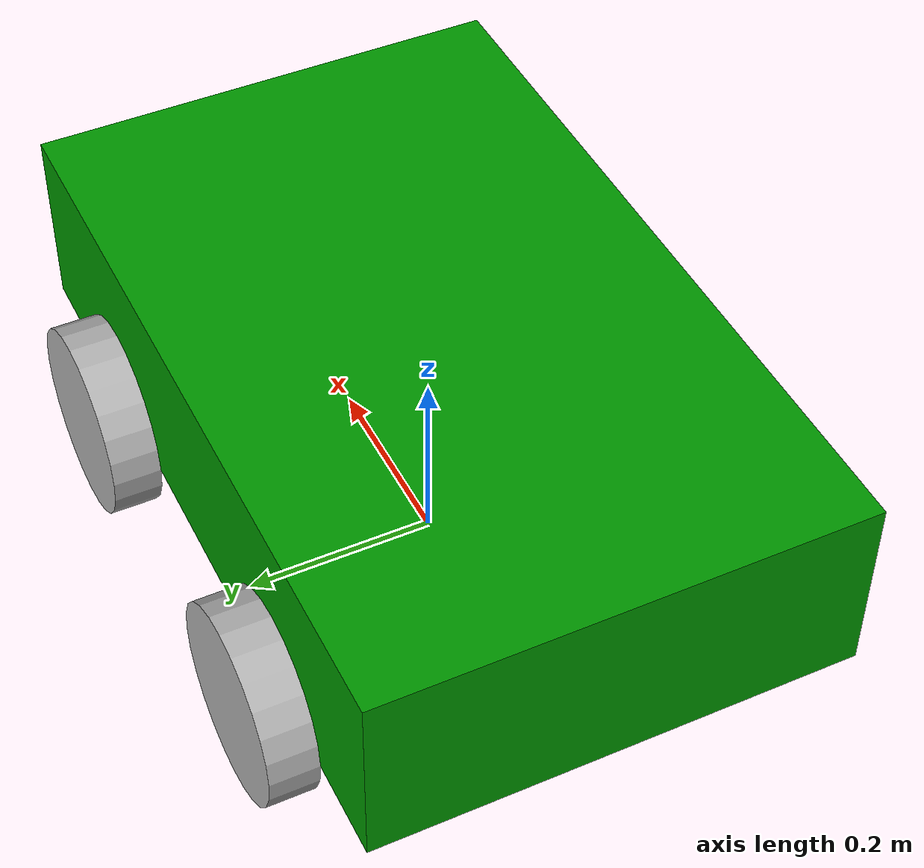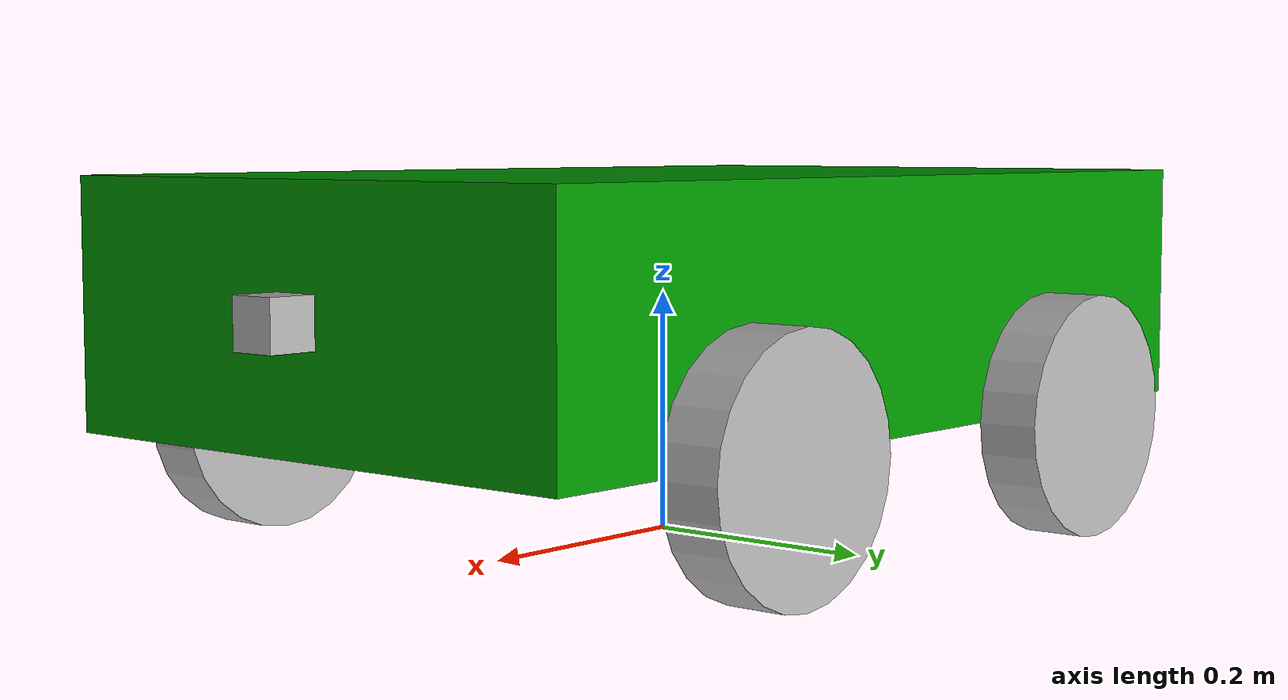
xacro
<?xml version="1.0"?>
<robot name="mobile_robot" xmlns:xacro="http://www.ros.org/wiki/xacro">

    <xacro:include filename="$(find mobile_robot_description)/urdf/common_properties.xacro" />
    <xacro:include filename="$(find mobile_robot_description)/urdf/mobile_base.xacro" />
    <xacro:include filename="$(find mobile_robot_description)/urdf/line_camera.xacro" />
    <xacro:include filename="$(find mobile_robot_description)/urdf/mobile_base_gazebo.xacro" />
    <xacro:include filename="$(find mobile_robot_description)/urdf/mobile_base.ros2_control.xacro" />
</robot>

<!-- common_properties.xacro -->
<robot xmlns:xacro="https://www.ros.org/wiki/xacro">

    <xacro:property name="base_length" value="0.8" />
    <xacro:property name="base_width" value="0.5" />
    <xacro:property name="base_height" value="0.2" />
    <xacro:property name="wheel_radius" value="0.1" />
    <xacro:property name="wheel_length" value="0.05" />

    <material name="green">
        <color rgba="0 0.6 0 1" />
    </material>
    <material name="gray">
        <color rgba="0.7 0.7 0.7 1" />
    </material>

    <xacro:macro name="box_inertia" params="m x y z o_xyz o_rpy">
        <inertial>
            <mass value="${m}" />
            <origin xyz="${o_xyz}" rpy="${o_rpy}" />
            <inertia ixx="${(m / 12) * (z * z + y * y)}" ixy="0" ixz="0"
                     iyy="${(m / 12) * (x * x + z * z)}" iyz="0"
                     izz="${(m / 12) * (x * x + y * y)}" />
        </inertial>
    </xacro:macro>

    <xacro:macro name="cylinder_inertia" params="m r l o_xyz o_rpy">
        <inertial>
            <mass value="${m}" />
            <origin xyz="${o_xyz}" rpy="${o_rpy}" />
            <inertia ixx="${(m / 12) * (3 * r * r + l * l)}" ixy="0" ixz="0"
                     iyy="${(m / 12) * (3 * r * r + l * l)}" iyz="0"
                     izz="${(m / 2) * (r * r)}" />
        </inertial>
    </xacro:macro>

    <xacro:macro name="sphere_inertia" params="m r o_xyz o_rpy">
        <inertial>
            <mass value="${m}" />
            <origin xyz="${o_xyz}" rpy="${o_rpy}" />
            <inertia ixx="${(2 / 5) * m * r * r}" ixy="0" ixz="0"
                     iyy="${(2 / 5) * m * r * r}" iyz="0"
                     izz="${(2 / 5) * m * r * r}" />
        </inertial>
    </xacro:macro>

</robot>

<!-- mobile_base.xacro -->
<robot xmlns:xacro="https://www.ros.org/wiki/xacro">

    <link name="base_footprint" />

    <link name="base_link">
        <visual>
            <geometry>
                <box size="${base_length} ${base_width} ${base_height}" />
            </geometry>
            <origin xyz="0 0 ${base_height / 2.0}" rpy="0 0 0" />
            <material name="green" />
        </visual>
        <collision>
            <geometry>
                <box size="${base_length} ${base_width} ${base_height}" />
            </geometry>
            <origin xyz="0 0 ${base_height / 2.0}" rpy="0 0 0" />
        </collision>
        <xacro:box_inertia m="6.0" x="${base_length}" y="${base_width}" z="${base_height}"
                           o_xyz="0 0 ${base_height / 2.0}" o_rpy="0 0 0" />
    </link>

    <xacro:macro name="wheel_link" params="prefix">
        <link name="${prefix}_wheel_link">
            <visual>
                <geometry>
                    <cylinder radius="${wheel_radius}"
                              length="${wheel_length}" />
                </geometry>
                <origin xyz="0 0 0" rpy="${pi / 2.0} 0 0" />
                <material name="gray" />
            </visual>
            <collision>
                <geometry>
                    <sphere radius="${wheel_radius}" />
                </geometry>
                <origin xyz="0 0 0" rpy="0 0 0" />
            </collision>
            <xacro:cylinder_inertia m="1.0" r="${wheel_radius}" l="${wheel_length}"
                                    o_xyz="0 0 0" o_rpy="${pi / 2.0} 0 0" />
        </link>
    </xacro:macro>

    <xacro:wheel_link prefix="front_right" />
    <xacro:wheel_link prefix="front_left" />
    <xacro:wheel_link prefix="rear_right" />
    <xacro:wheel_link prefix="rear_left" />

    <joint name="base_joint" type="fixed">
        <parent link="base_footprint" />
        <child link="base_link" />
        <origin xyz="0 0 ${wheel_radius}" rpy="0 0 0" />
    </joint>

    <joint name="base_front_right_wheel_joint" type="continuous">
        <parent link="base_link" />
        <child link="front_right_wheel_link" />
        <origin xyz="${base_length / 4.0} ${-(base_width + wheel_length) / 2.0} 0" rpy="0 0 0" />
        <axis xyz="0 1 0" />
    </joint>

    <joint name="base_front_left_wheel_joint" type="continuous">
        <parent link="base_link" />
        <child link="front_left_wheel_link" />
        <origin xyz="${base_length / 4.0} ${(base_width + wheel_length) / 2.0} 0" rpy="0 0 0" />
        <axis xyz="0 1 0" />
    </joint>

    <joint name="base_rear_right_wheel_joint" type="continuous">
        <parent link="base_link" />
        <child link="rear_right_wheel_link" />
        <origin xyz="${-base_length / 4.0} ${-(base_width + wheel_length) / 2.0} 0" rpy="0 0 0" />
        <axis xyz="0 1 0" />
    </joint>

    <joint name="base_rear_left_wheel_joint" type="continuous">
        <parent link="base_link" />
        <child link="rear_left_wheel_link" />
        <origin xyz="${-base_length / 4.0} ${(base_width + wheel_length) / 2.0} 0" rpy="0 0 0" />
        <axis xyz="0 1 0" />
    </joint>

</robot>

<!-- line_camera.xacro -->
<robot xmlns:xacro="http://www.ros.org/wiki/xacro">

    <link name="line_camera_link">
        <visual>
            <geometry>
                <box size="0.04 0.04 0.04" />
            </geometry>
            <material name="gray" />
        </visual>

        <collision>
            <geometry>
                <box size="0.04 0.04 0.04" />
            </geometry>
        </collision>

        <xacro:box_inertia
            m="0.05"
            x="0.04"
            y="0.04"
            z="0.04"
            o_xyz="0 0 0"
            o_rpy="0 0 0" />
    </link>

    <joint name="line_camera_joint" type="fixed">
        <parent link="base_link" />
        <child link="line_camera_link" />

        <origin
            xyz="${base_length / 2.0 + 0.02} 0 ${base_height / 2.0}"
            rpy="0 ${pi / 2.0} 0" />
    </joint>

</robot>
